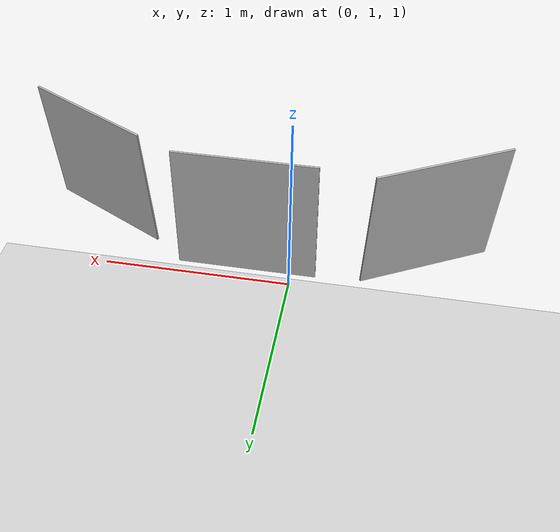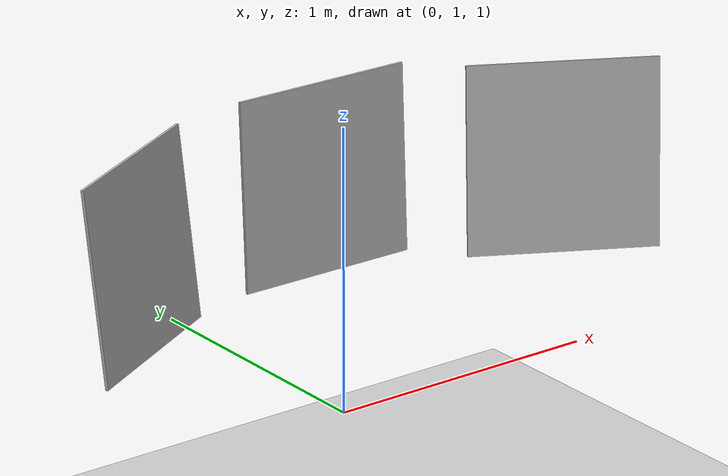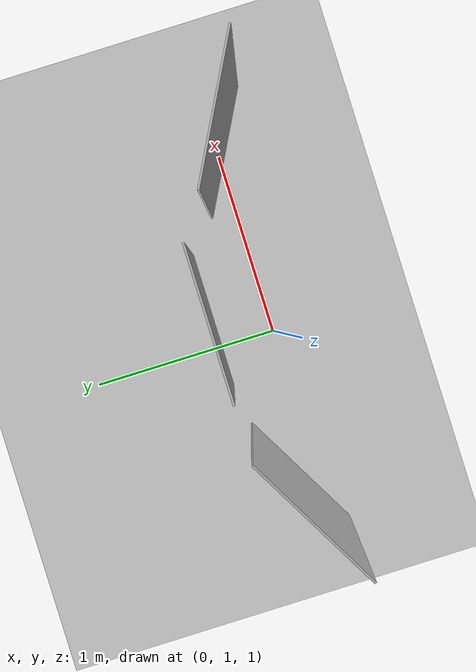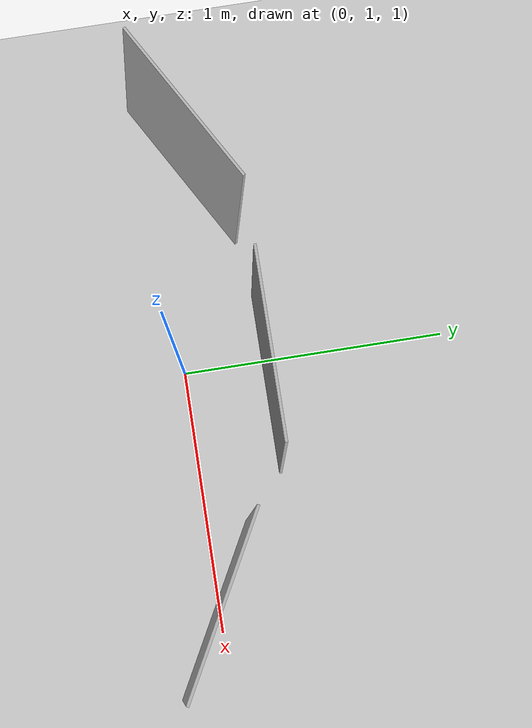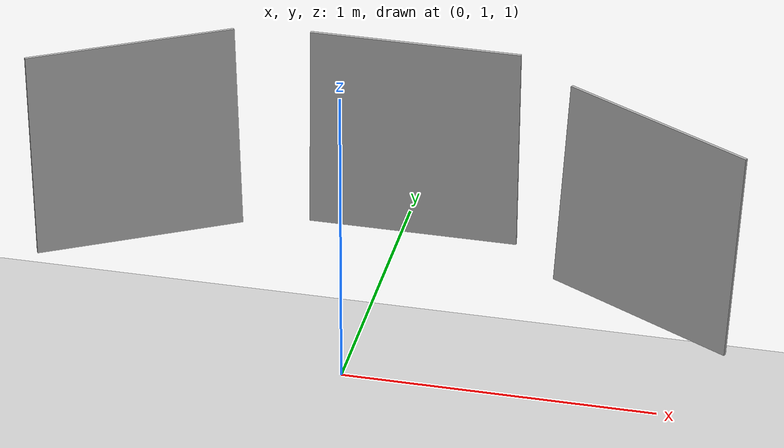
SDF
<sdf version="1.6">
 <world name="default">
  <light name="sun" type="directional">
   <pose>0 0 10 0 -0 0</pose>
   <diffuse>0.8 0.8 0.8 1</diffuse>
   <specular>0.2 0.2 0.2 1</specular>
   <attenuation>
    <range>1000</range>
    <constant>0.9</constant>
    <linear>0.01</linear>
    <quadratic>0.001</quadratic>
   </attenuation>
   <direction>-0.5 0.1 -0.9</direction>
  </light>
  <model name="ground_plane">
   <static>1</static>
   <link name="link">
    <collision name="collision">
     <geometry><plane><normal>0 0 1</normal><size>100 100</size></plane></geometry>
     <surface><friction><ode><mu>100</mu><mu2>50</mu2></ode></friction></surface>
    </collision>
    <visual name="visual">
     <cast_shadows>0</cast_shadows>
     <geometry><plane><normal>0 0 1</normal><size>100 100</size></plane></geometry>
     <material>
      <script><uri>file://media/materials/scripts/gazebo.material</uri><name>Gazebo/Grey</name></script>
     </material>
    </visual>
   </link>
  </model>
  <gravity>0 0 -9.8</gravity>
  <magnetic_field>6e-06 2.3e-05 -4.2e-05</magnetic_field>
  <atmosphere type="adiabatic"/>
  <physics name="default_physics" default="0" type="ode">
   <max_step_size>0.001</max_step_size>
   <real_time_factor>1</real_time_factor>
   <real_time_update_rate>1000</real_time_update_rate>
  </physics>
  <scene><ambient>0.4 0.4 0.4 1</ambient><background>0.7 0.7 0.7 1</background><shadows>1</shadows></scene>
  <spherical_coordinates>
   <surface_model>EARTH_WGS84</surface_model>
   <latitude_deg>0</latitude_deg>
   <longitude_deg>0</longitude_deg>
   <elevation>0</elevation>
   <heading_deg>0</heading_deg>
  </spherical_coordinates>
  <model name="Apriltag0">
   <link name="main">
    <pose>0.2925 0.2925 0 0 -0 1.5708</pose>
    <visual name="main_Visual">
     <geometry><box><size>0.6638 0.6638 0.01</size></box></geometry>
     <material>
      <script>
       <uri>model://Apriltag0/materials/scripts</uri>
       <uri>model://Apriltag0/materials/textures</uri>
       <name>Apriltag0</name>
      </script>
     </material>
    </visual>
    <collision name="surface"><geometry><box><size>0.6638 0.6638 0.01</size></box></geometry></collision>
   </link>
   <static>1</static>
   <pose>0.677601 1.14295 1.38808 1.46919 -0 -0.490523</pose>
  </model>
  <model name="Apriltag1">
   <link name="main">
    <pose>0.2925 0.2925 0 0 -0 1.5708</pose>
    <visual name="main_Visual">
     <geometry><box><size>0.6638 0.6638 0.01</size></box></geometry>
     <material>
      <script>
       <uri>model://Apriltag1/materials/scripts</uri>
       <uri>model://Apriltag1/materials/textures</uri>
       <name>Apriltag1</name>
      </script>
     </material>
    </visual>
    <collision name="surface"><geometry><box><size>0.6638 0.6638 0.01</size></box></geometry></collision>
   </link>
   <static>1</static>
   <pose>-0.131759 1.30569 1.40444 1.52381 -0 6e-06</pose>
  </model>
  <model name="Apriltag2">
   <link name="main">
    <pose>0.2925 0.2925 0 0 -0 1.5708</pose>
    <visual name="main_Visual">
     <geometry><box><size>0.6638 0.6638 0.01</size></box></geometry>
     <material>
      <script>
       <uri>model://Apriltag2/materials/scripts</uri>
       <uri>model://Apriltag2/materials/textures</uri>
       <name>Apriltag2</name>
      </script>
     </material>
    </visual>
    <collision name="surface"><geometry><box><size>0.6638 0.6638 0.01</size></box></geometry></collision>
   </link>
   <static>1</static>
   <pose>-0.930266 0.973461 1.38921 1.46321 0.002679 0.507641</pose>
  </model>
 </world>
</sdf>
